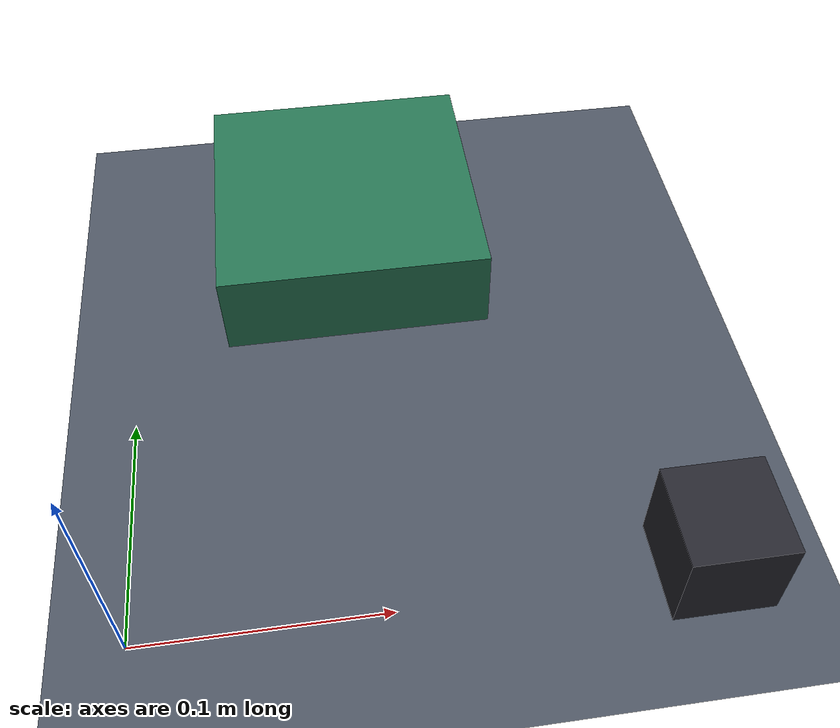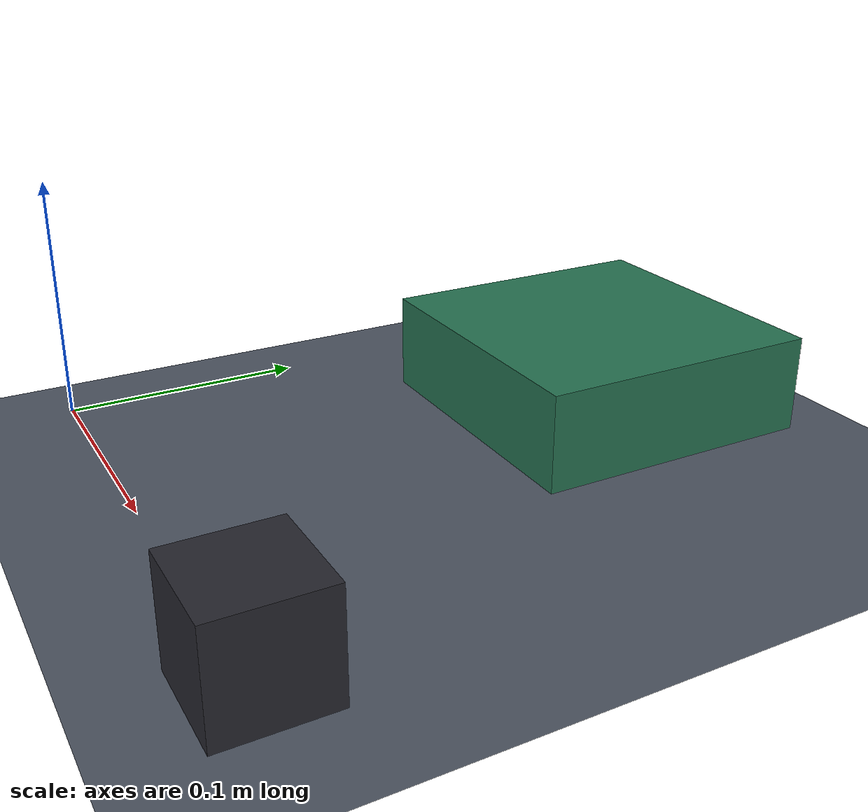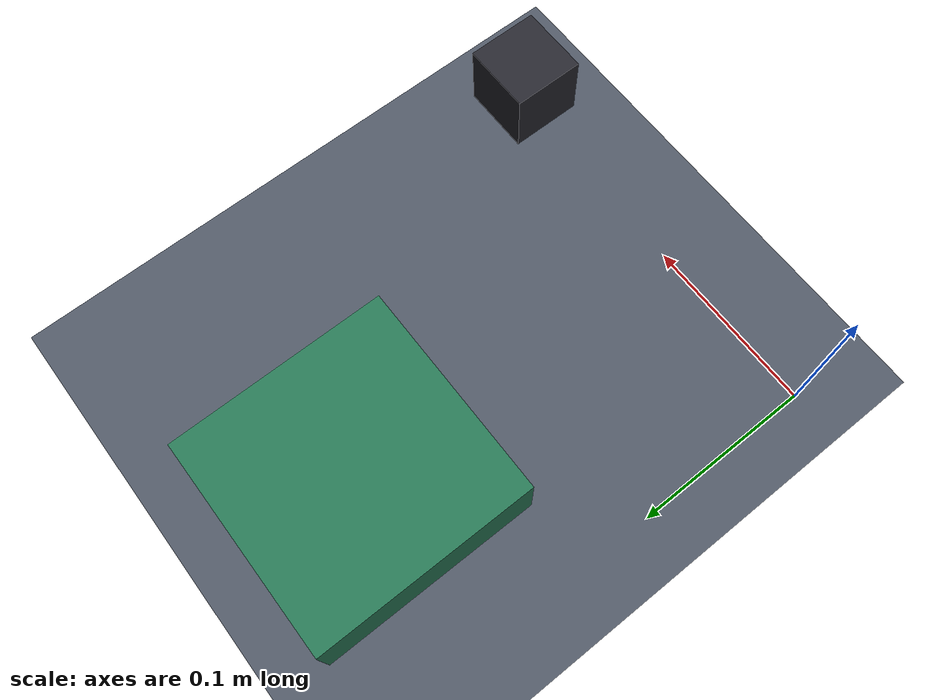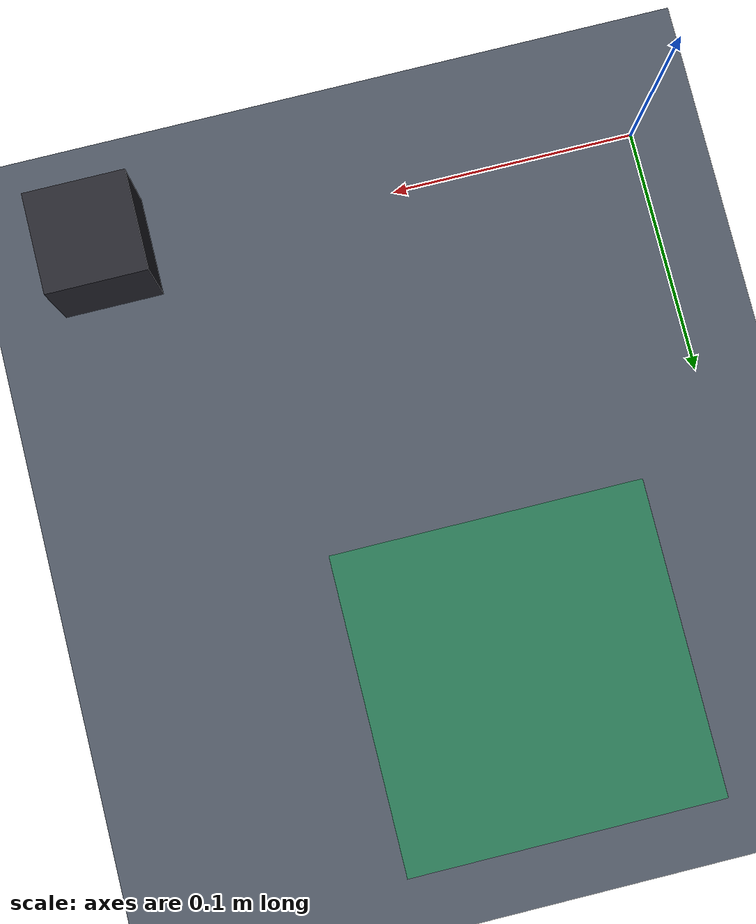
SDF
<?xml version="1.0" ?>
<!-- SO-ARM101 픽앤플레이스 실습용 최소 월드: 바닥 + 큐브 + 상자 -->
<sdf version="1.9">
  <world name="so_arm101_table">

    <physics name="1ms" type="ignored">
      <max_step_size>0.001</max_step_size>
      <real_time_factor>1.0</real_time_factor>
    </physics>

    <plugin filename="gz-sim-physics-system"
            name="gz::sim::systems::Physics"/>
    <plugin filename="gz-sim-user-commands-system"
            name="gz::sim::systems::UserCommands"/>
    <plugin filename="gz-sim-scene-broadcaster-system"
            name="gz::sim::systems::SceneBroadcaster"/>
    <plugin filename="gz-sim-contact-system"
            name="gz::sim::systems::Contact"/>

    <light type="directional" name="sun">
      <cast_shadows>true</cast_shadows>
      <pose>0 0 10 0 0 0</pose>
      <diffuse>0.9 0.9 0.9 1</diffuse>
      <specular>0.2 0.2 0.2 1</specular>
      <direction>-0.4 0.5 -0.9</direction>
    </light>

    <model name="ground_plane">
      <static>true</static>
      <link name="link">
        <collision name="collision">
          <geometry><plane><normal>0 0 1</normal><size>4 4</size></plane></geometry>
          <surface>
            <friction><ode><mu>1.0</mu><mu2>1.0</mu2></ode></friction>
          </surface>
        </collision>
        <visual name="visual">
          <geometry><plane><normal>0 0 1</normal><size>4 4</size></plane></geometry>
          <material>
            <ambient>0.25 0.28 0.32 1</ambient>
            <diffuse>0.30 0.33 0.38 1</diffuse>
          </material>
        </visual>
      </link>
    </model>

    <!-- 집을 큐브 (4cm) -->
    <model name="cube">
      <pose>0.22 0.0 0.025 0 0 0</pose>
      <link name="link">
        <inertial>
          <mass>0.05</mass>
          <inertia>
            <ixx>1.333e-05</ixx><iyy>1.333e-05</iyy><izz>1.333e-05</izz>
            <ixy>0</ixy><ixz>0</ixz><iyz>0</iyz>
          </inertia>
        </inertial>
        <collision name="collision">
          <geometry><box><size>0.04 0.04 0.04</size></box></geometry>
          <surface>
            <!-- 마찰이 낮으면 그리퍼에서 미끄러집니다. 1.0~1.5 가 현실적입니다. -->
            <friction><ode><mu>1.2</mu><mu2>1.2</mu2></ode></friction>
          </surface>
        </collision>
        <visual name="visual">
          <geometry><box><size>0.04 0.04 0.04</size></box></geometry>
          <material>
            <ambient>0.10 0.10 0.12 1</ambient>
            <diffuse>0.15 0.15 0.18 1</diffuse>
          </material>
        </visual>
      </link>
    </model>

    <!-- 놓을 상자 -->
    <model name="bin">
      <static>true</static>
      <pose>0.10 0.20 0.02 0 0 0</pose>
      <link name="link">
        <collision name="collision">
          <geometry><box><size>0.12 0.12 0.04</size></box></geometry>
        </collision>
        <visual name="visual">
          <geometry><box><size>0.12 0.12 0.04</size></box></geometry>
          <material>
            <ambient>0.10 0.35 0.25 1</ambient>
            <diffuse>0.15 0.45 0.32 1</diffuse>
          </material>
        </visual>
      </link>
    </model>

  </world>
</sdf>
